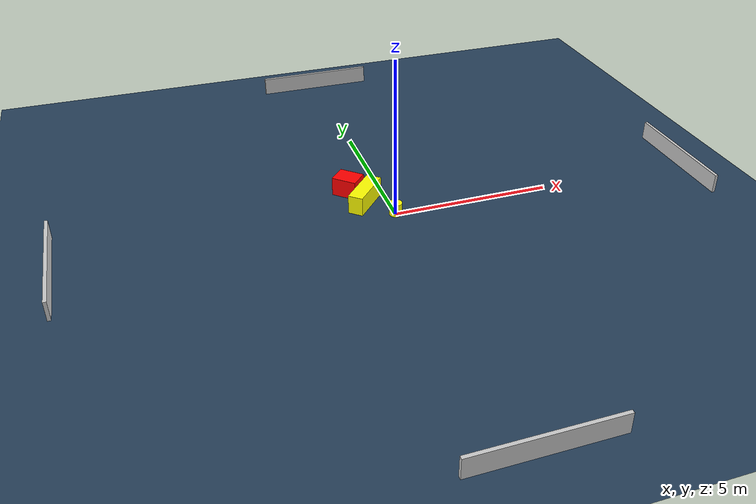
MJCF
<?xml version="1.0" ?>
<mujoco model="generated_environment">
  <option timestep="0.01" integrator="RK4" cone="elliptic"/>
  <default>
    <geom density="1"/>
  </default>
  <asset>
    <texture builtin="gradient" height="3072" name="skybox" rgb1="0.3 0.5 0.7" rgb2="0 0 0" type="skybox" width="512"/>
    <texture builtin="checker" height="300" name="groundplane" rgb1="0.2 0.3 0.4" rgb2="0.1 0.2 0.3" type="2d" width="300"/>
    <material name="groundplane" reflectance="0.2" texrepeat="5 5" texture="groundplane"/>
  </asset>
  <worldbody>
    <light dir="0 0 -1" directional="true" pos="0 0 1.5"/>
    <geom condim="3" friction="0.5 0.005 0.001" material="groundplane" name="floor" pos="0 0 0" size="0 0 0.05" type="plane"/>
    <body name="walls">
      <geom name="wall_1" condim="4" pos="-10.0 0.0 0.3" rgba="0.800000011920929 0.800000011920929 0.800000011920929 1.0" size="0.05 2.0 0.3" type="box"/>
      <geom name="wall_2" condim="4" pos="10.0 0.0 0.3" rgba="0.800000011920929 0.800000011920929 0.800000011920929 1.0" size="0.05 2.0 0.3" type="box"/>
      <geom name="wall_3" condim="4" pos="0.0 -10.0 0.3" rgba="0.800000011920929 0.800000011920929 0.800000011920929 1.0" size="2.0 0.05 0.3" type="box"/>
      <geom name="wall_4" condim="4" pos="0.0 10.0 0.3" rgba="0.800000011920929 0.800000011920929 0.800000011920929 1.0" size="2.0 0.05 0.3" type="box"/>
    </body>
    <body name="robot">
      <joint name="joint_x" type="slide" pos="0 0 0" axis="1 0 0"/>
      <joint name="joint_y" type="slide" pos="0 0 0" axis="0 1 0"/>
      <geom name="robot" type="cylinder" pos="0.0 0.0 0.2" size="0.2 0.2 0.0" mass="5.0" friction="1.0 0.005 0.0001" condim="4" rgba="1.0 1.0 0.0 1.0"/>
    </body>
    <body name="obstacle_1_movable">
      <geom name="obstacle_1_movable" condim="4" pos="-0.7047730162411162 0.8930263004316497 0.3" euler="0 0 228.83403848887167" friction="0.0 0.005 0.001" rgba="1.0 1.0 0.0 1.0" size="0.7030074431497435 0.23707319869052831 0.3" type="box" mass="0.1"/>
      <joint type="free"/>
    </body>
    <body name="obstacle_2_static">
      <geom name="obstacle_2_static" condim="4" pos="-1.02162488367485 1.679195024908337 0.3" euler="0 0 137.07072330972233" friction="0.0 0.005 0.001" rgba="1.0 0.0 0.0 1.0" size="0.40268699000640484 0.3135999105557148 0.3" type="box"/>
    </body>
  </worldbody>
  <actuator>
    <motor name="actuator_x" joint="joint_x" gear="1" ctrlrange="-1 1"/>
    <motor name="actuator_y" joint="joint_y" gear="1" ctrlrange="-1 1"/>
  </actuator>
</mujoco>
